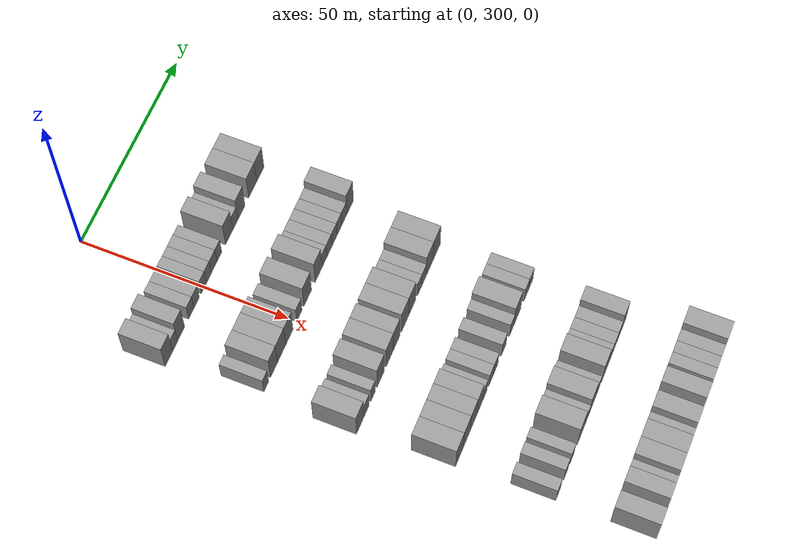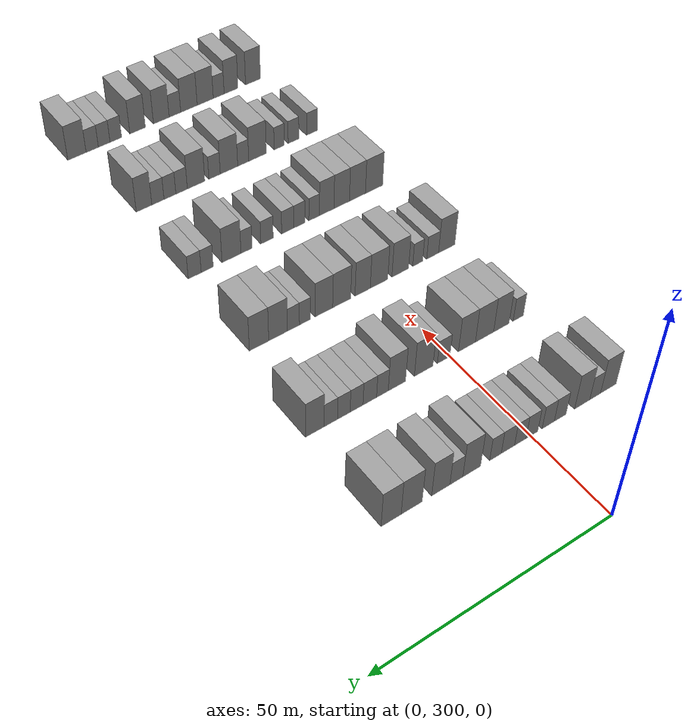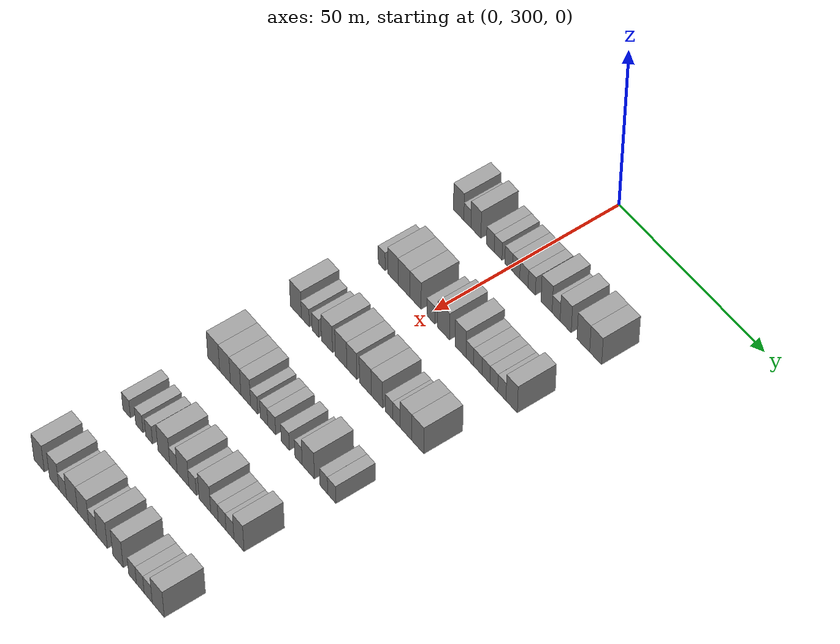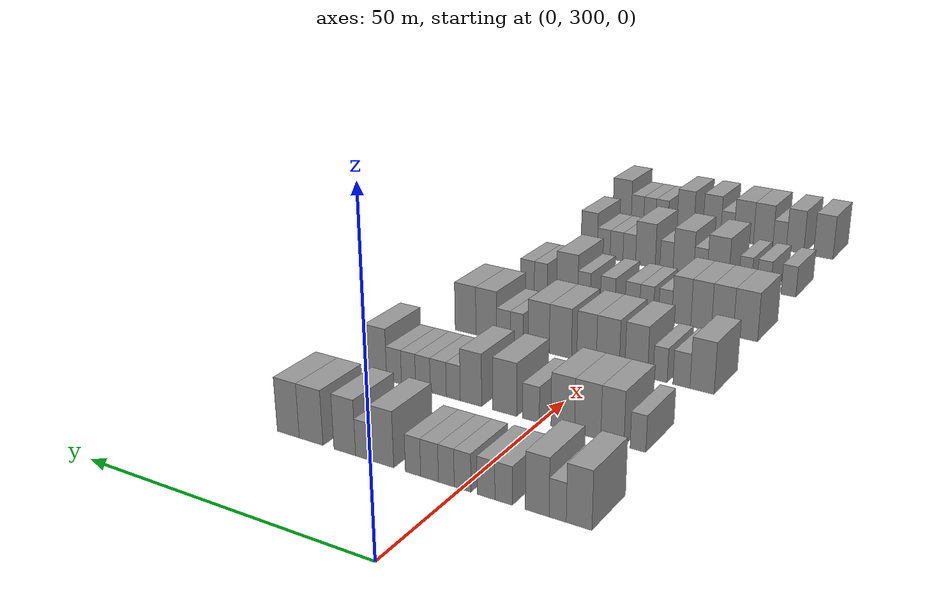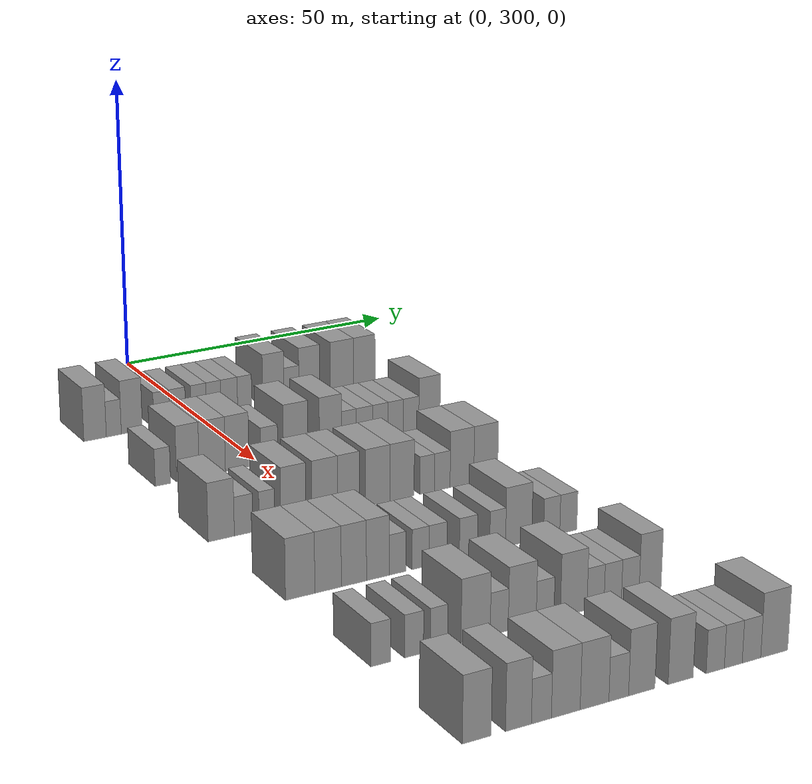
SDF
<sdf version="1.6">
 <world name="default">
  <model name="building_166">
   <static>1</static>
   <pose>25.0000 281.7110 0 0.000000 0.000000 0.000000</pose>
   <link name="link">
    <pose>0 0 4.50 0 0 0</pose>
    <collision name="collision"><geometry><box><size>10.0000 3.8083 9.0000</size></box></geometry></collision>
    <visual name="visual">
     <cast_shadows>0</cast_shadows>
     <geometry><box><size>10.0000 3.8083 9.0000</size></box></geometry>
     <material>
      <script>
       <uri>model://grey_wall/materials/scripts</uri>
       <uri>model://grey_wall/materials/textures</uri>
       <name>vrc/grey_wall</name>
      </script>
     </material>
    </visual>
   </link>
  </model>
  <model name="building_167">
   <static>1</static>
   <pose>25.0000 284.9013 0 0.000000 0.000000 0.000000</pose>
   <link name="link">
    <pose>0 0 3.00 0 0 0</pose>
    <collision name="collision"><geometry><box><size>10.0000 2.5723 6.0000</size></box></geometry></collision>
    <visual name="visual">
     <cast_shadows>0</cast_shadows>
     <geometry><box><size>10.0000 2.5723 6.0000</size></box></geometry>
     <material>
      <script>
       <uri>model://grey_wall/materials/scripts</uri>
       <uri>model://grey_wall/materials/textures</uri>
       <name>vrc/grey_wall</name>
      </script>
     </material>
    </visual>
   </link>
  </model>
  <model name="building_168">
   <static>1</static>
   <pose>25.0000 288.0024 0 0.000000 0.000000 0.000000</pose>
   <link name="link">
    <pose>0 0 4.50 0 0 0</pose>
    <collision name="collision"><geometry><box><size>10.0000 3.6300 9.0000</size></box></geometry></collision>
    <visual name="visual">
     <cast_shadows>0</cast_shadows>
     <geometry><box><size>10.0000 3.6300 9.0000</size></box></geometry>
     <material>
      <script>
       <uri>model://grey_wall/materials/scripts</uri>
       <uri>model://grey_wall/materials/textures</uri>
       <name>vrc/grey_wall</name>
      </script>
     </material>
    </visual>
   </link>
  </model>
  <model name="building_169">
   <static>1</static>
   <pose>25.0000 293.1995 0 0.000000 0.000000 0.000000</pose>
   <link name="link">
    <pose>0 0 3.00 0 0 0</pose>
    <collision name="collision"><geometry><box><size>10.0000 2.7642 6.0000</size></box></geometry></collision>
    <visual name="visual">
     <cast_shadows>0</cast_shadows>
     <geometry><box><size>10.0000 2.7642 6.0000</size></box></geometry>
     <material>
      <script>
       <uri>model://grey_wall/materials/scripts</uri>
       <uri>model://grey_wall/materials/textures</uri>
       <name>vrc/grey_wall</name>
      </script>
     </material>
    </visual>
   </link>
  </model>
  <model name="building_170">
   <static>1</static>
   <pose>25.0000 295.9941 0 0.000000 0.000000 0.000000</pose>
   <link name="link">
    <pose>0 0 3.00 0 0 0</pose>
    <collision name="collision"><geometry><box><size>10.0000 2.8248 6.0000</size></box></geometry></collision>
    <visual name="visual">
     <cast_shadows>0</cast_shadows>
     <geometry><box><size>10.0000 2.8248 6.0000</size></box></geometry>
     <material>
      <script>
       <uri>model://grey_wall/materials/scripts</uri>
       <uri>model://grey_wall/materials/textures</uri>
       <name>vrc/grey_wall</name>
      </script>
     </material>
    </visual>
   </link>
  </model>
  <model name="building_171">
   <static>1</static>
   <pose>25.0000 299.7646 0 0.000000 0.000000 0.000000</pose>
   <link name="link">
    <pose>0 0 3.00 0 0 0</pose>
    <collision name="collision"><geometry><box><size>10.0000 2.7162 6.0000</size></box></geometry></collision>
    <visual name="visual">
     <cast_shadows>0</cast_shadows>
     <geometry><box><size>10.0000 2.7162 6.0000</size></box></geometry>
     <material>
      <script>
       <uri>model://grey_wall/materials/scripts</uri>
       <uri>model://grey_wall/materials/textures</uri>
       <name>vrc/grey_wall</name>
      </script>
     </material>
    </visual>
   </link>
  </model>
  <model name="building_172">
   <static>1</static>
   <pose>25.0000 302.4198 0 0.000000 0.000000 0.000000</pose>
   <link name="link">
    <pose>0 0 3.00 0 0 0</pose>
    <collision name="collision"><geometry><box><size>10.0000 2.5943 6.0000</size></box></geometry></collision>
    <visual name="visual">
     <cast_shadows>0</cast_shadows>
     <geometry><box><size>10.0000 2.5943 6.0000</size></box></geometry>
     <material>
      <script>
       <uri>model://grey_wall/materials/scripts</uri>
       <uri>model://grey_wall/materials/textures</uri>
       <name>vrc/grey_wall</name>
      </script>
     </material>
    </visual>
   </link>
  </model>
  <model name="building_173">
   <static>1</static>
   <pose>25.0000 305.2056 0 0.000000 0.000000 0.000000</pose>
   <link name="link">
    <pose>0 0 3.00 0 0 0</pose>
    <collision name="collision"><geometry><box><size>10.0000 2.9773 6.0000</size></box></geometry></collision>
    <visual name="visual">
     <cast_shadows>0</cast_shadows>
     <geometry><box><size>10.0000 2.9773 6.0000</size></box></geometry>
     <material>
      <script>
       <uri>model://grey_wall/materials/scripts</uri>
       <uri>model://grey_wall/materials/textures</uri>
       <name>vrc/grey_wall</name>
      </script>
     </material>
    </visual>
   </link>
  </model>
  <model name="building_174">
   <static>1</static>
   <pose>25.0000 307.9878 0 0.000000 0.000000 0.000000</pose>
   <link name="link">
    <pose>0 0 3.00 0 0 0</pose>
    <collision name="collision"><geometry><box><size>10.0000 2.5871 6.0000</size></box></geometry></collision>
    <visual name="visual">
     <cast_shadows>0</cast_shadows>
     <geometry><box><size>10.0000 2.5871 6.0000</size></box></geometry>
     <material>
      <script>
       <uri>model://grey_wall/materials/scripts</uri>
       <uri>model://grey_wall/materials/textures</uri>
       <name>vrc/grey_wall</name>
      </script>
     </material>
    </visual>
   </link>
  </model>
  <model name="building_175">
   <static>1</static>
   <pose>25.0000 313.2307 0 0.000000 0.000000 0.000000</pose>
   <link name="link">
    <pose>0 0 4.50 0 0 0</pose>
    <collision name="collision"><geometry><box><size>10.0000 3.8987 9.0000</size></box></geometry></collision>
    <visual name="visual">
     <cast_shadows>0</cast_shadows>
     <geometry><box><size>10.0000 3.8987 9.0000</size></box></geometry>
     <material>
      <script>
       <uri>model://grey_wall/materials/scripts</uri>
       <uri>model://grey_wall/materials/textures</uri>
       <name>vrc/grey_wall</name>
      </script>
     </material>
    </visual>
   </link>
  </model>
  <model name="building_176">
   <static>1</static>
   <pose>25.0000 316.5735 0 0.000000 0.000000 0.000000</pose>
   <link name="link">
    <pose>0 0 3.00 0 0 0</pose>
    <collision name="collision"><geometry><box><size>10.0000 2.7870 6.0000</size></box></geometry></collision>
    <visual name="visual">
     <cast_shadows>0</cast_shadows>
     <geometry><box><size>10.0000 2.7870 6.0000</size></box></geometry>
     <material>
      <script>
       <uri>model://grey_wall/materials/scripts</uri>
       <uri>model://grey_wall/materials/textures</uri>
       <name>vrc/grey_wall</name>
      </script>
     </material>
    </visual>
   </link>
  </model>
  <model name="building_177">
   <static>1</static>
   <pose>25.0000 319.9131 0 0.000000 0.000000 0.000000</pose>
   <link name="link">
    <pose>0 0 4.50 0 0 0</pose>
    <collision name="collision"><geometry><box><size>10.0000 3.8922 9.0000</size></box></geometry></collision>
    <visual name="visual">
     <cast_shadows>0</cast_shadows>
     <geometry><box><size>10.0000 3.8922 9.0000</size></box></geometry>
     <material>
      <script>
       <uri>model://grey_wall/materials/scripts</uri>
       <uri>model://grey_wall/materials/textures</uri>
       <name>vrc/grey_wall</name>
      </script>
     </material>
    </visual>
   </link>
  </model>
  <model name="building_178">
   <static>1</static>
   <pose>25.0000 326.0613 0 0.000000 0.000000 0.000000</pose>
   <link name="link">
    <pose>0 0 4.50 0 0 0</pose>
    <collision name="collision"><geometry><box><size>10.0000 4.4042 9.0000</size></box></geometry></collision>
    <visual name="visual">
     <cast_shadows>0</cast_shadows>
     <geometry><box><size>10.0000 4.4042 9.0000</size></box></geometry>
     <material>
      <script>
       <uri>model://grey_wall/materials/scripts</uri>
       <uri>model://grey_wall/materials/textures</uri>
       <name>vrc/grey_wall</name>
      </script>
     </material>
    </visual>
   </link>
  </model>
  <model name="building_179">
   <static>1</static>
   <pose>25.0000 330.3291 0 0.000000 0.000000 0.000000</pose>
   <link name="link">
    <pose>0 0 4.50 0 0 0</pose>
    <collision name="collision"><geometry><box><size>10.0000 4.1312 9.0000</size></box></geometry></collision>
    <visual name="visual">
     <cast_shadows>0</cast_shadows>
     <geometry><box><size>10.0000 4.1312 9.0000</size></box></geometry>
     <material>
      <script>
       <uri>model://grey_wall/materials/scripts</uri>
       <uri>model://grey_wall/materials/textures</uri>
       <name>vrc/grey_wall</name>
      </script>
     </material>
    </visual>
   </link>
  </model>
  <model name="building_358">
   <static>1</static>
   <pose>47.0000 283.6261 0 0.000000 0.000000 0.000000</pose>
   <link name="link">
    <pose>0 0 3.00 0 0 0</pose>
    <collision name="collision"><geometry><box><size>10.0000 2.5145 6.0000</size></box></geometry></collision>
    <visual name="visual">
     <cast_shadows>0</cast_shadows>
     <geometry><box><size>10.0000 2.5145 6.0000</size></box></geometry>
     <material>
      <script>
       <uri>model://grey_wall/materials/scripts</uri>
       <uri>model://grey_wall/materials/textures</uri>
       <name>vrc/grey_wall</name>
      </script>
     </material>
    </visual>
   </link>
  </model>
  <model name="building_359">
   <static>1</static>
   <pose>47.0000 287.7657 0 0.000000 0.000000 0.000000</pose>
   <link name="link">
    <pose>0 0 4.50 0 0 0</pose>
    <collision name="collision"><geometry><box><size>10.0000 3.7648 9.0000</size></box></geometry></collision>
    <visual name="visual">
     <cast_shadows>0</cast_shadows>
     <geometry><box><size>10.0000 3.7648 9.0000</size></box></geometry>
     <material>
      <script>
       <uri>model://grey_wall/materials/scripts</uri>
       <uri>model://grey_wall/materials/textures</uri>
       <name>vrc/grey_wall</name>
      </script>
     </material>
    </visual>
   </link>
  </model>
  <model name="building_360">
   <static>1</static>
   <pose>47.0000 291.8306 0 0.000000 0.000000 0.000000</pose>
   <link name="link">
    <pose>0 0 4.50 0 0 0</pose>
    <collision name="collision"><geometry><box><size>10.0000 4.3651 9.0000</size></box></geometry></collision>
    <visual name="visual">
     <cast_shadows>0</cast_shadows>
     <geometry><box><size>10.0000 4.3651 9.0000</size></box></geometry>
     <material>
      <script>
       <uri>model://grey_wall/materials/scripts</uri>
       <uri>model://grey_wall/materials/textures</uri>
       <name>vrc/grey_wall</name>
      </script>
     </material>
    </visual>
   </link>
  </model>
  <model name="building_361">
   <static>1</static>
   <pose>47.0000 296.0141 0 0.000000 0.000000 0.000000</pose>
   <link name="link">
    <pose>0 0 4.50 0 0 0</pose>
    <collision name="collision"><geometry><box><size>10.0000 4.0019 9.0000</size></box></geometry></collision>
    <visual name="visual">
     <cast_shadows>0</cast_shadows>
     <geometry><box><size>10.0000 4.0019 9.0000</size></box></geometry>
     <material>
      <script>
       <uri>model://grey_wall/materials/scripts</uri>
       <uri>model://grey_wall/materials/textures</uri>
       <name>vrc/grey_wall</name>
      </script>
     </material>
    </visual>
   </link>
  </model>
  <model name="building_362">
   <static>1</static>
   <pose>47.0000 301.4804 0 0.000000 0.000000 0.000000</pose>
   <link name="link">
    <pose>0 0 3.00 0 0 0</pose>
    <collision name="collision"><geometry><box><size>10.0000 2.9306 6.0000</size></box></geometry></collision>
    <visual name="visual">
     <cast_shadows>0</cast_shadows>
     <geometry><box><size>10.0000 2.9306 6.0000</size></box></geometry>
     <material>
      <script>
       <uri>model://grey_wall/materials/scripts</uri>
       <uri>model://grey_wall/materials/textures</uri>
       <name>vrc/grey_wall</name>
      </script>
     </material>
    </visual>
   </link>
  </model>
  <model name="building_363">
   <static>1</static>
   <pose>47.0000 306.0813 0 0.000000 0.000000 0.000000</pose>
   <link name="link">
    <pose>0 0 4.50 0 0 0</pose>
    <collision name="collision"><geometry><box><size>10.0000 4.2711 9.0000</size></box></geometry></collision>
    <visual name="visual">
     <cast_shadows>0</cast_shadows>
     <geometry><box><size>10.0000 4.2711 9.0000</size></box></geometry>
     <material>
      <script>
       <uri>model://grey_wall/materials/scripts</uri>
       <uri>model://grey_wall/materials/textures</uri>
       <name>vrc/grey_wall</name>
      </script>
     </material>
    </visual>
   </link>
  </model>
  <model name="building_364">
   <static>1</static>
   <pose>47.0000 312.1673 0 0.000000 0.000000 0.000000</pose>
   <link name="link">
    <pose>0 0 4.50 0 0 0</pose>
    <collision name="collision"><geometry><box><size>10.0000 3.9009 9.0000</size></box></geometry></collision>
    <visual name="visual">
     <cast_shadows>0</cast_shadows>
     <geometry><box><size>10.0000 3.9009 9.0000</size></box></geometry>
     <material>
      <script>
       <uri>model://grey_wall/materials/scripts</uri>
       <uri>model://grey_wall/materials/textures</uri>
       <name>vrc/grey_wall</name>
      </script>
     </material>
    </visual>
   </link>
  </model>
  <model name="building_365">
   <static>1</static>
   <pose>47.0000 315.4169 0 0.000000 0.000000 0.000000</pose>
   <link name="link">
    <pose>0 0 3.00 0 0 0</pose>
    <collision name="collision"><geometry><box><size>10.0000 2.5984 6.0000</size></box></geometry></collision>
    <visual name="visual">
     <cast_shadows>0</cast_shadows>
     <geometry><box><size>10.0000 2.5984 6.0000</size></box></geometry>
     <material>
      <script>
       <uri>model://grey_wall/materials/scripts</uri>
       <uri>model://grey_wall/materials/textures</uri>
       <name>vrc/grey_wall</name>
      </script>
     </material>
    </visual>
   </link>
  </model>
  <model name="building_366">
   <static>1</static>
   <pose>47.0000 318.2119 0 0.000000 0.000000 0.000000</pose>
   <link name="link">
    <pose>0 0 3.00 0 0 0</pose>
    <collision name="collision"><geometry><box><size>10.0000 2.9916 6.0000</size></box></geometry></collision>
    <visual name="visual">
     <cast_shadows>0</cast_shadows>
     <geometry><box><size>10.0000 2.9916 6.0000</size></box></geometry>
     <material>
      <script>
       <uri>model://grey_wall/materials/scripts</uri>
       <uri>model://grey_wall/materials/textures</uri>
       <name>vrc/grey_wall</name>
      </script>
     </material>
    </visual>
   </link>
  </model>
  <model name="building_367">
   <static>1</static>
   <pose>47.0000 321.1097 0 0.000000 0.000000 0.000000</pose>
   <link name="link">
    <pose>0 0 3.00 0 0 0</pose>
    <collision name="collision"><geometry><box><size>10.0000 2.8039 6.0000</size></box></geometry></collision>
    <visual name="visual">
     <cast_shadows>0</cast_shadows>
     <geometry><box><size>10.0000 2.8039 6.0000</size></box></geometry>
     <material>
      <script>
       <uri>model://grey_wall/materials/scripts</uri>
       <uri>model://grey_wall/materials/textures</uri>
       <name>vrc/grey_wall</name>
      </script>
     </material>
    </visual>
   </link>
  </model>
  <model name="building_368">
   <static>1</static>
   <pose>47.0000 323.8746 0 0.000000 0.000000 0.000000</pose>
   <link name="link">
    <pose>0 0 3.00 0 0 0</pose>
    <collision name="collision"><geometry><box><size>10.0000 2.7260 6.0000</size></box></geometry></collision>
    <visual name="visual">
     <cast_shadows>0</cast_shadows>
     <geometry><box><size>10.0000 2.7260 6.0000</size></box></geometry>
     <material>
      <script>
       <uri>model://grey_wall/materials/scripts</uri>
       <uri>model://grey_wall/materials/textures</uri>
       <name>vrc/grey_wall</name>
      </script>
     </material>
    </visual>
   </link>
  </model>
  <model name="building_369">
   <static>1</static>
   <pose>47.0000 326.6795 0 0.000000 0.000000 0.000000</pose>
   <link name="link">
    <pose>0 0 3.00 0 0 0</pose>
    <collision name="collision"><geometry><box><size>10.0000 2.8840 6.0000</size></box></geometry></collision>
    <visual name="visual">
     <cast_shadows>0</cast_shadows>
     <geometry><box><size>10.0000 2.8840 6.0000</size></box></geometry>
     <material>
      <script>
       <uri>model://grey_wall/materials/scripts</uri>
       <uri>model://grey_wall/materials/textures</uri>
       <name>vrc/grey_wall</name>
      </script>
     </material>
    </visual>
   </link>
  </model>
  <model name="building_370">
   <static>1</static>
   <pose>47.0000 330.0916 0 0.000000 0.000000 0.000000</pose>
   <link name="link">
    <pose>0 0 4.50 0 0 0</pose>
    <collision name="collision"><geometry><box><size>10.0000 3.9401 9.0000</size></box></geometry></collision>
    <visual name="visual">
     <cast_shadows>0</cast_shadows>
     <geometry><box><size>10.0000 3.9401 9.0000</size></box></geometry>
     <material>
      <script>
       <uri>model://grey_wall/materials/scripts</uri>
       <uri>model://grey_wall/materials/textures</uri>
       <name>vrc/grey_wall</name>
      </script>
     </material>
    </visual>
   </link>
  </model>
  <model name="building_544">
   <static>1</static>
   <pose>69.0000 282.8954 0 0.000000 0.000000 0.000000</pose>
   <link name="link">
    <pose>0 0 4.50 0 0 0</pose>
    <collision name="collision"><geometry><box><size>10.0000 4.1082 9.0000</size></box></geometry></collision>
    <visual name="visual">
     <cast_shadows>0</cast_shadows>
     <geometry><box><size>10.0000 4.1082 9.0000</size></box></geometry>
     <material>
      <script>
       <uri>model://grey_wall/materials/scripts</uri>
       <uri>model://grey_wall/materials/textures</uri>
       <name>vrc/grey_wall</name>
      </script>
     </material>
    </visual>
   </link>
  </model>
  <model name="building_545">
   <static>1</static>
   <pose>69.0000 286.4210 0 0.000000 0.000000 0.000000</pose>
   <link name="link">
    <pose>0 0 3.00 0 0 0</pose>
    <collision name="collision"><geometry><box><size>10.0000 2.9429 6.0000</size></box></geometry></collision>
    <visual name="visual">
     <cast_shadows>0</cast_shadows>
     <geometry><box><size>10.0000 2.9429 6.0000</size></box></geometry>
     <material>
      <script>
       <uri>model://grey_wall/materials/scripts</uri>
       <uri>model://grey_wall/materials/textures</uri>
       <name>vrc/grey_wall</name>
      </script>
     </material>
    </visual>
   </link>
  </model>
  <model name="building_546">
   <static>1</static>
   <pose>69.0000 290.1252 0 0.000000 0.000000 0.000000</pose>
   <link name="link">
    <pose>0 0 3.00 0 0 0</pose>
    <collision name="collision"><geometry><box><size>10.0000 2.4654 6.0000</size></box></geometry></collision>
    <visual name="visual">
     <cast_shadows>0</cast_shadows>
     <geometry><box><size>10.0000 2.4654 6.0000</size></box></geometry>
     <material>
      <script>
       <uri>model://grey_wall/materials/scripts</uri>
       <uri>model://grey_wall/materials/textures</uri>
       <name>vrc/grey_wall</name>
      </script>
     </material>
    </visual>
   </link>
  </model>
  <model name="building_547">
   <static>1</static>
   <pose>69.0000 294.3831 0 0.000000 0.000000 0.000000</pose>
   <link name="link">
    <pose>0 0 4.50 0 0 0</pose>
    <collision name="collision"><geometry><box><size>10.0000 4.0504 9.0000</size></box></geometry></collision>
    <visual name="visual">
     <cast_shadows>0</cast_shadows>
     <geometry><box><size>10.0000 4.0504 9.0000</size></box></geometry>
     <material>
      <script>
       <uri>model://grey_wall/materials/scripts</uri>
       <uri>model://grey_wall/materials/textures</uri>
       <name>vrc/grey_wall</name>
      </script>
     </material>
    </visual>
   </link>
  </model>
  <model name="building_548">
   <static>1</static>
   <pose>69.0000 299.5077 0 0.000000 0.000000 0.000000</pose>
   <link name="link">
    <pose>0 0 4.50 0 0 0</pose>
    <collision name="collision"><geometry><box><size>10.0000 4.1988 9.0000</size></box></geometry></collision>
    <visual name="visual">
     <cast_shadows>0</cast_shadows>
     <geometry><box><size>10.0000 4.1988 9.0000</size></box></geometry>
     <material>
      <script>
       <uri>model://grey_wall/materials/scripts</uri>
       <uri>model://grey_wall/materials/textures</uri>
       <name>vrc/grey_wall</name>
      </script>
     </material>
    </visual>
   </link>
  </model>
  <model name="building_549">
   <static>1</static>
   <pose>69.0000 303.4177 0 0.000000 0.000000 0.000000</pose>
   <link name="link">
    <pose>0 0 4.50 0 0 0</pose>
    <collision name="collision"><geometry><box><size>10.0000 3.6212 9.0000</size></box></geometry></collision>
    <visual name="visual">
     <cast_shadows>0</cast_shadows>
     <geometry><box><size>10.0000 3.6212 9.0000</size></box></geometry>
     <material>
      <script>
       <uri>model://grey_wall/materials/scripts</uri>
       <uri>model://grey_wall/materials/textures</uri>
       <name>vrc/grey_wall</name>
      </script>
     </material>
    </visual>
   </link>
  </model>
  <model name="building_550">
   <static>1</static>
   <pose>69.0000 308.3317 0 0.000000 0.000000 0.000000</pose>
   <link name="link">
    <pose>0 0 4.50 0 0 0</pose>
    <collision name="collision"><geometry><box><size>10.0000 4.2067 9.0000</size></box></geometry></collision>
    <visual name="visual">
     <cast_shadows>0</cast_shadows>
     <geometry><box><size>10.0000 4.2067 9.0000</size></box></geometry>
     <material>
      <script>
       <uri>model://grey_wall/materials/scripts</uri>
       <uri>model://grey_wall/materials/textures</uri>
       <name>vrc/grey_wall</name>
      </script>
     </material>
    </visual>
   </link>
  </model>
  <model name="building_551">
   <static>1</static>
   <pose>69.0000 312.4737 0 0.000000 0.000000 0.000000</pose>
   <link name="link">
    <pose>0 0 4.50 0 0 0</pose>
    <collision name="collision"><geometry><box><size>10.0000 4.0772 9.0000</size></box></geometry></collision>
    <visual name="visual">
     <cast_shadows>0</cast_shadows>
     <geometry><box><size>10.0000 4.0772 9.0000</size></box></geometry>
     <material>
      <script>
       <uri>model://grey_wall/materials/scripts</uri>
       <uri>model://grey_wall/materials/textures</uri>
       <name>vrc/grey_wall</name>
      </script>
     </material>
    </visual>
   </link>
  </model>
  <model name="building_552">
   <static>1</static>
   <pose>69.0000 316.7752 0 0.000000 0.000000 0.000000</pose>
   <link name="link">
    <pose>0 0 3.00 0 0 0</pose>
    <collision name="collision"><geometry><box><size>10.0000 2.5257 6.0000</size></box></geometry></collision>
    <visual name="visual">
     <cast_shadows>0</cast_shadows>
     <geometry><box><size>10.0000 2.5257 6.0000</size></box></geometry>
     <material>
      <script>
       <uri>model://grey_wall/materials/scripts</uri>
       <uri>model://grey_wall/materials/textures</uri>
       <name>vrc/grey_wall</name>
      </script>
     </material>
    </visual>
   </link>
  </model>
  <model name="building_553">
   <static>1</static>
   <pose>69.0000 319.3839 0 0.000000 0.000000 0.000000</pose>
   <link name="link">
    <pose>0 0 3.00 0 0 0</pose>
    <collision name="collision"><geometry><box><size>10.0000 2.6917 6.0000</size></box></geometry></collision>
    <visual name="visual">
     <cast_shadows>0</cast_shadows>
     <geometry><box><size>10.0000 2.6917 6.0000</size></box></geometry>
     <material>
      <script>
       <uri>model://grey_wall/materials/scripts</uri>
       <uri>model://grey_wall/materials/textures</uri>
       <name>vrc/grey_wall</name>
      </script>
     </material>
    </visual>
   </link>
  </model>
  <model name="building_554">
   <static>1</static>
   <pose>69.0000 322.8153 0 0.000000 0.000000 0.000000</pose>
   <link name="link">
    <pose>0 0 4.50 0 0 0</pose>
    <collision name="collision"><geometry><box><size>10.0000 4.1712 9.0000</size></box></geometry></collision>
    <visual name="visual">
     <cast_shadows>0</cast_shadows>
     <geometry><box><size>10.0000 4.1712 9.0000</size></box></geometry>
     <material>
      <script>
       <uri>model://grey_wall/materials/scripts</uri>
       <uri>model://grey_wall/materials/textures</uri>
       <name>vrc/grey_wall</name>
      </script>
     </material>
    </visual>
   </link>
  </model>
  <model name="building_555">
   <static>1</static>
   <pose>69.0000 327.0246 0 0.000000 0.000000 0.000000</pose>
   <link name="link">
    <pose>0 0 4.50 0 0 0</pose>
    <collision name="collision"><geometry><box><size>10.0000 4.2475 9.0000</size></box></geometry></collision>
    <visual name="visual">
     <cast_shadows>0</cast_shadows>
     <geometry><box><size>10.0000 4.2475 9.0000</size></box></geometry>
     <material>
      <script>
       <uri>model://grey_wall/materials/scripts</uri>
       <uri>model://grey_wall/materials/textures</uri>
       <name>vrc/grey_wall</name>
      </script>
     </material>
    </visual>
   </link>
  </model>
  <model name="building_724">
   <static>1</static>
   <pose>91.0000 284.1343 0 0.000000 0.000000 0.000000</pose>
   <link name="link">
    <pose>0 0 4.50 0 0 0</pose>
    <collision name="collision"><geometry><box><size>10.0000 4.4308 9.0000</size></box></geometry></collision>
    <visual name="visual">
     <cast_shadows>0</cast_shadows>
     <geometry><box><size>10.0000 4.4308 9.0000</size></box></geometry>
     <material>
      <script>
       <uri>model://grey_wall/materials/scripts</uri>
       <uri>model://grey_wall/materials/textures</uri>
       <name>vrc/grey_wall</name>
      </script>
     </material>
    </visual>
   </link>
  </model>
  <model name="building_725">
   <static>1</static>
   <pose>91.0000 288.3679 0 0.000000 0.000000 0.000000</pose>
   <link name="link">
    <pose>0 0 4.50 0 0 0</pose>
    <collision name="collision"><geometry><box><size>10.0000 4.0365 9.0000</size></box></geometry></collision>
    <visual name="visual">
     <cast_shadows>0</cast_shadows>
     <geometry><box><size>10.0000 4.0365 9.0000</size></box></geometry>
     <material>
      <script>
       <uri>model://grey_wall/materials/scripts</uri>
       <uri>model://grey_wall/materials/textures</uri>
       <name>vrc/grey_wall</name>
      </script>
     </material>
    </visual>
   </link>
  </model>
  <model name="building_726">
   <static>1</static>
   <pose>91.0000 292.3277 0 0.000000 0.000000 0.000000</pose>
   <link name="link">
    <pose>0 0 4.50 0 0 0</pose>
    <collision name="collision"><geometry><box><size>10.0000 3.8831 9.0000</size></box></geometry></collision>
    <visual name="visual">
     <cast_shadows>0</cast_shadows>
     <geometry><box><size>10.0000 3.8831 9.0000</size></box></geometry>
     <material>
      <script>
       <uri>model://grey_wall/materials/scripts</uri>
       <uri>model://grey_wall/materials/textures</uri>
       <name>vrc/grey_wall</name>
      </script>
     </material>
    </visual>
   </link>
  </model>
  <model name="building_727">
   <static>1</static>
   <pose>91.0000 296.0705 0 0.000000 0.000000 0.000000</pose>
   <link name="link">
    <pose>0 0 4.50 0 0 0</pose>
    <collision name="collision"><geometry><box><size>10.0000 3.6026 9.0000</size></box></geometry></collision>
    <visual name="visual">
     <cast_shadows>0</cast_shadows>
     <geometry><box><size>10.0000 3.6026 9.0000</size></box></geometry>
     <material>
      <script>
       <uri>model://grey_wall/materials/scripts</uri>
       <uri>model://grey_wall/materials/textures</uri>
       <name>vrc/grey_wall</name>
      </script>
     </material>
    </visual>
   </link>
  </model>
  <model name="building_728">
   <static>1</static>
   <pose>91.0000 299.1581 0 0.000000 0.000000 0.000000</pose>
   <link name="link">
    <pose>0 0 3.00 0 0 0</pose>
    <collision name="collision"><geometry><box><size>10.0000 2.5726 6.0000</size></box></geometry></collision>
    <visual name="visual">
     <cast_shadows>0</cast_shadows>
     <geometry><box><size>10.0000 2.5726 6.0000</size></box></geometry>
     <material>
      <script>
       <uri>model://grey_wall/materials/scripts</uri>
       <uri>model://grey_wall/materials/textures</uri>
       <name>vrc/grey_wall</name>
      </script>
     </material>
    </visual>
   </link>
  </model>
  <model name="building_729">
   <static>1</static>
   <pose>91.0000 302.7968 0 0.000000 0.000000 0.000000</pose>
   <link name="link">
    <pose>0 0 3.00 0 0 0</pose>
    <collision name="collision"><geometry><box><size>10.0000 2.7049 6.0000</size></box></geometry></collision>
    <visual name="visual">
     <cast_shadows>0</cast_shadows>
     <geometry><box><size>10.0000 2.7049 6.0000</size></box></geometry>
     <material>
      <script>
       <uri>model://grey_wall/materials/scripts</uri>
       <uri>model://grey_wall/materials/textures</uri>
       <name>vrc/grey_wall</name>
      </script>
     </material>
    </visual>
   </link>
  </model>
  <model name="building_730">
   <static>1</static>
   <pose>91.0000 305.5882 0 0.000000 0.000000 0.000000</pose>
   <link name="link">
    <pose>0 0 3.00 0 0 0</pose>
    <collision name="collision"><geometry><box><size>10.0000 2.8779 6.0000</size></box></geometry></collision>
    <visual name="visual">
     <cast_shadows>0</cast_shadows>
     <geometry><box><size>10.0000 2.8779 6.0000</size></box></geometry>
     <material>
      <script>
       <uri>model://grey_wall/materials/scripts</uri>
       <uri>model://grey_wall/materials/textures</uri>
       <name>vrc/grey_wall</name>
      </script>
     </material>
    </visual>
   </link>
  </model>
  <model name="building_731">
   <static>1</static>
   <pose>91.0000 310.5139 0 0.000000 0.000000 0.000000</pose>
   <link name="link">
    <pose>0 0 3.00 0 0 0</pose>
    <collision name="collision"><geometry><box><size>10.0000 2.9735 6.0000</size></box></geometry></collision>
    <visual name="visual">
     <cast_shadows>0</cast_shadows>
     <geometry><box><size>10.0000 2.9735 6.0000</size></box></geometry>
     <material>
      <script>
       <uri>model://grey_wall/materials/scripts</uri>
       <uri>model://grey_wall/materials/textures</uri>
       <name>vrc/grey_wall</name>
      </script>
     </material>
    </visual>
   </link>
  </model>
  <model name="building_732">
   <static>1</static>
   <pose>91.0000 315.3149 0 0.000000 0.000000 0.000000</pose>
   <link name="link">
    <pose>0 0 3.00 0 0 0</pose>
    <collision name="collision"><geometry><box><size>10.0000 2.6283 6.0000</size></box></geometry></collision>
    <visual name="visual">
     <cast_shadows>0</cast_shadows>
     <geometry><box><size>10.0000 2.6283 6.0000</size></box></geometry>
     <material>
      <script>
       <uri>model://grey_wall/materials/scripts</uri>
       <uri>model://grey_wall/materials/textures</uri>
       <name>vrc/grey_wall</name>
      </script>
     </material>
    </visual>
   </link>
  </model>
  <model name="building_733">
   <static>1</static>
   <pose>91.0000 318.8189 0 0.000000 0.000000 0.000000</pose>
   <link name="link">
    <pose>0 0 4.50 0 0 0</pose>
    <collision name="collision"><geometry><box><size>10.0000 4.3798 9.0000</size></box></geometry></collision>
    <visual name="visual">
     <cast_shadows>0</cast_shadows>
     <geometry><box><size>10.0000 4.3798 9.0000</size></box></geometry>
     <material>
      <script>
       <uri>model://grey_wall/materials/scripts</uri>
       <uri>model://grey_wall/materials/textures</uri>
       <name>vrc/grey_wall</name>
      </script>
     </material>
    </visual>
   </link>
  </model>
  <model name="building_734">
   <static>1</static>
   <pose>91.0000 324.3898 0 0.000000 0.000000 0.000000</pose>
   <link name="link">
    <pose>0 0 3.00 0 0 0</pose>
    <collision name="collision"><geometry><box><size>10.0000 2.7620 6.0000</size></box></geometry></collision>
    <visual name="visual">
     <cast_shadows>0</cast_shadows>
     <geometry><box><size>10.0000 2.7620 6.0000</size></box></geometry>
     <material>
      <script>
       <uri>model://grey_wall/materials/scripts</uri>
       <uri>model://grey_wall/materials/textures</uri>
       <name>vrc/grey_wall</name>
      </script>
     </material>
    </visual>
   </link>
  </model>
  <model name="building_735">
   <static>1</static>
   <pose>91.0000 327.2352 0 0.000000 0.000000 0.000000</pose>
   <link name="link">
    <pose>0 0 3.00 0 0 0</pose>
    <collision name="collision"><geometry><box><size>10.0000 2.9287 6.0000</size></box></geometry></collision>
    <visual name="visual">
     <cast_shadows>0</cast_shadows>
     <geometry><box><size>10.0000 2.9287 6.0000</size></box></geometry>
     <material>
      <script>
       <uri>model://grey_wall/materials/scripts</uri>
       <uri>model://grey_wall/materials/textures</uri>
       <name>vrc/grey_wall</name>
      </script>
     </material>
    </visual>
   </link>
  </model>
  <model name="building_910">
   <static>1</static>
   <pose>113.0000 284.1883 0 0.000000 0.000000 0.000000</pose>
   <link name="link">
    <pose>0 0 3.00 0 0 0</pose>
    <collision name="collision"><geometry><box><size>10.0000 2.8570 6.0000</size></box></geometry></collision>
    <visual name="visual">
     <cast_shadows>0</cast_shadows>
     <geometry><box><size>10.0000 2.8570 6.0000</size></box></geometry>
     <material>
      <script>
       <uri>model://grey_wall/materials/scripts</uri>
       <uri>model://grey_wall/materials/textures</uri>
       <name>vrc/grey_wall</name>
      </script>
     </material>
    </visual>
   </link>
  </model>
  <model name="building_911">
   <static>1</static>
   <pose>113.0000 289.0014 0 0.000000 0.000000 0.000000</pose>
   <link name="link">
    <pose>0 0 3.00 0 0 0</pose>
    <collision name="collision"><geometry><box><size>10.0000 2.7692 6.0000</size></box></geometry></collision>
    <visual name="visual">
     <cast_shadows>0</cast_shadows>
     <geometry><box><size>10.0000 2.7692 6.0000</size></box></geometry>
     <material>
      <script>
       <uri>model://grey_wall/materials/scripts</uri>
       <uri>model://grey_wall/materials/textures</uri>
       <name>vrc/grey_wall</name>
      </script>
     </material>
    </visual>
   </link>
  </model>
  <model name="building_912">
   <static>1</static>
   <pose>113.0000 292.6737 0 0.000000 0.000000 0.000000</pose>
   <link name="link">
    <pose>0 0 3.00 0 0 0</pose>
    <collision name="collision"><geometry><box><size>10.0000 2.5754 6.0000</size></box></geometry></collision>
    <visual name="visual">
     <cast_shadows>0</cast_shadows>
     <geometry><box><size>10.0000 2.5754 6.0000</size></box></geometry>
     <material>
      <script>
       <uri>model://grey_wall/materials/scripts</uri>
       <uri>model://grey_wall/materials/textures</uri>
       <name>vrc/grey_wall</name>
      </script>
     </material>
    </visual>
   </link>
  </model>
  <model name="building_913">
   <static>1</static>
   <pose>113.0000 298.1644 0 0.000000 0.000000 0.000000</pose>
   <link name="link">
    <pose>0 0 4.50 0 0 0</pose>
    <collision name="collision"><geometry><box><size>10.0000 4.4060 9.0000</size></box></geometry></collision>
    <visual name="visual">
     <cast_shadows>0</cast_shadows>
     <geometry><box><size>10.0000 4.4060 9.0000</size></box></geometry>
     <material>
      <script>
       <uri>model://grey_wall/materials/scripts</uri>
       <uri>model://grey_wall/materials/textures</uri>
       <name>vrc/grey_wall</name>
      </script>
     </material>
    </visual>
   </link>
  </model>
  <model name="building_914">
   <static>1</static>
   <pose>113.0000 301.7435 0 0.000000 0.000000 0.000000</pose>
   <link name="link">
    <pose>0 0 3.00 0 0 0</pose>
    <collision name="collision"><geometry><box><size>10.0000 2.7522 6.0000</size></box></geometry></collision>
    <visual name="visual">
     <cast_shadows>0</cast_shadows>
     <geometry><box><size>10.0000 2.7522 6.0000</size></box></geometry>
     <material>
      <script>
       <uri>model://grey_wall/materials/scripts</uri>
       <uri>model://grey_wall/materials/textures</uri>
       <name>vrc/grey_wall</name>
      </script>
     </material>
    </visual>
   </link>
  </model>
  <model name="building_915">
   <static>1</static>
   <pose>113.0000 305.2740 0 0.000000 0.000000 0.000000</pose>
   <link name="link">
    <pose>0 0 4.50 0 0 0</pose>
    <collision name="collision"><geometry><box><size>10.0000 4.3088 9.0000</size></box></geometry></collision>
    <visual name="visual">
     <cast_shadows>0</cast_shadows>
     <geometry><box><size>10.0000 4.3088 9.0000</size></box></geometry>
     <material>
      <script>
       <uri>model://grey_wall/materials/scripts</uri>
       <uri>model://grey_wall/materials/textures</uri>
       <name>vrc/grey_wall</name>
      </script>
     </material>
    </visual>
   </link>
  </model>
  <model name="building_916">
   <static>1</static>
   <pose>113.0000 308.8129 0 0.000000 0.000000 0.000000</pose>
   <link name="link">
    <pose>0 0 3.00 0 0 0</pose>
    <collision name="collision"><geometry><box><size>10.0000 2.7690 6.0000</size></box></geometry></collision>
    <visual name="visual">
     <cast_shadows>0</cast_shadows>
     <geometry><box><size>10.0000 2.7690 6.0000</size></box></geometry>
     <material>
      <script>
       <uri>model://grey_wall/materials/scripts</uri>
       <uri>model://grey_wall/materials/textures</uri>
       <name>vrc/grey_wall</name>
      </script>
     </material>
    </visual>
   </link>
  </model>
  <model name="building_917">
   <static>1</static>
   <pose>113.0000 313.3058 0 0.000000 0.000000 0.000000</pose>
   <link name="link">
    <pose>0 0 4.50 0 0 0</pose>
    <collision name="collision"><geometry><box><size>10.0000 4.2169 9.0000</size></box></geometry></collision>
    <visual name="visual">
     <cast_shadows>0</cast_shadows>
     <geometry><box><size>10.0000 4.2169 9.0000</size></box></geometry>
     <material>
      <script>
       <uri>model://grey_wall/materials/scripts</uri>
       <uri>model://grey_wall/materials/textures</uri>
       <name>vrc/grey_wall</name>
      </script>
     </material>
    </visual>
   </link>
  </model>
  <model name="building_918">
   <static>1</static>
   <pose>113.0000 316.7836 0 0.000000 0.000000 0.000000</pose>
   <link name="link">
    <pose>0 0 3.00 0 0 0</pose>
    <collision name="collision"><geometry><box><size>10.0000 2.7387 6.0000</size></box></geometry></collision>
    <visual name="visual">
     <cast_shadows>0</cast_shadows>
     <geometry><box><size>10.0000 2.7387 6.0000</size></box></geometry>
     <material>
      <script>
       <uri>model://grey_wall/materials/scripts</uri>
       <uri>model://grey_wall/materials/textures</uri>
       <name>vrc/grey_wall</name>
      </script>
     </material>
    </visual>
   </link>
  </model>
  <model name="building_919">
   <static>1</static>
   <pose>113.0000 319.5598 0 0.000000 0.000000 0.000000</pose>
   <link name="link">
    <pose>0 0 3.00 0 0 0</pose>
    <collision name="collision"><geometry><box><size>10.0000 2.8137 6.0000</size></box></geometry></collision>
    <visual name="visual">
     <cast_shadows>0</cast_shadows>
     <geometry><box><size>10.0000 2.8137 6.0000</size></box></geometry>
     <material>
      <script>
       <uri>model://grey_wall/materials/scripts</uri>
       <uri>model://grey_wall/materials/textures</uri>
       <name>vrc/grey_wall</name>
      </script>
     </material>
    </visual>
   </link>
  </model>
  <model name="building_920">
   <static>1</static>
   <pose>113.0000 322.3978 0 0.000000 0.000000 0.000000</pose>
   <link name="link">
    <pose>0 0 3.00 0 0 0</pose>
    <collision name="collision"><geometry><box><size>10.0000 2.8623 6.0000</size></box></geometry></collision>
    <visual name="visual">
     <cast_shadows>0</cast_shadows>
     <geometry><box><size>10.0000 2.8623 6.0000</size></box></geometry>
     <material>
      <script>
       <uri>model://grey_wall/materials/scripts</uri>
       <uri>model://grey_wall/materials/textures</uri>
       <name>vrc/grey_wall</name>
      </script>
     </material>
    </visual>
   </link>
  </model>
  <model name="building_921">
   <static>1</static>
   <pose>113.0000 325.6397 0 0.000000 0.000000 0.000000</pose>
   <link name="link">
    <pose>0 0 4.50 0 0 0</pose>
    <collision name="collision"><geometry><box><size>10.0000 3.6215 9.0000</size></box></geometry></collision>
    <visual name="visual">
     <cast_shadows>0</cast_shadows>
     <geometry><box><size>10.0000 3.6215 9.0000</size></box></geometry>
     <material>
      <script>
       <uri>model://grey_wall/materials/scripts</uri>
       <uri>model://grey_wall/materials/textures</uri>
       <name>vrc/grey_wall</name>
      </script>
     </material>
    </visual>
   </link>
  </model>
  <model name="building_1092">
   <static>1</static>
   <pose>135.0000 284.7773 0 0.000000 0.000000 0.000000</pose>
   <link name="link">
    <pose>0 0 4.50 0 0 0</pose>
    <collision name="collision"><geometry><box><size>10.0000 3.9858 9.0000</size></box></geometry></collision>
    <visual name="visual">
     <cast_shadows>0</cast_shadows>
     <geometry><box><size>10.0000 3.9858 9.0000</size></box></geometry>
     <material>
      <script>
       <uri>model://grey_wall/materials/scripts</uri>
       <uri>model://grey_wall/materials/textures</uri>
       <name>vrc/grey_wall</name>
      </script>
     </material>
    </visual>
   </link>
  </model>
  <model name="building_1093">
   <static>1</static>
   <pose>135.0000 290.5918 0 0.000000 0.000000 0.000000</pose>
   <link name="link">
    <pose>0 0 4.50 0 0 0</pose>
    <collision name="collision"><geometry><box><size>10.0000 3.6432 9.0000</size></box></geometry></collision>
    <visual name="visual">
     <cast_shadows>0</cast_shadows>
     <geometry><box><size>10.0000 3.6432 9.0000</size></box></geometry>
     <material>
      <script>
       <uri>model://grey_wall/materials/scripts</uri>
       <uri>model://grey_wall/materials/textures</uri>
       <name>vrc/grey_wall</name>
      </script>
     </material>
    </visual>
   </link>
  </model>
  <model name="building_1094">
   <static>1</static>
   <pose>135.0000 293.8349 0 0.000000 0.000000 0.000000</pose>
   <link name="link">
    <pose>0 0 3.00 0 0 0</pose>
    <collision name="collision"><geometry><box><size>10.0000 2.8431 6.0000</size></box></geometry></collision>
    <visual name="visual">
     <cast_shadows>0</cast_shadows>
     <geometry><box><size>10.0000 2.8431 6.0000</size></box></geometry>
     <material>
      <script>
       <uri>model://grey_wall/materials/scripts</uri>
       <uri>model://grey_wall/materials/textures</uri>
       <name>vrc/grey_wall</name>
      </script>
     </material>
    </visual>
   </link>
  </model>
  <model name="building_1095">
   <static>1</static>
   <pose>135.0000 297.3332 0 0.000000 0.000000 0.000000</pose>
   <link name="link">
    <pose>0 0 4.50 0 0 0</pose>
    <collision name="collision"><geometry><box><size>10.0000 4.1535 9.0000</size></box></geometry></collision>
    <visual name="visual">
     <cast_shadows>0</cast_shadows>
     <geometry><box><size>10.0000 4.1535 9.0000</size></box></geometry>
     <material>
      <script>
       <uri>model://grey_wall/materials/scripts</uri>
       <uri>model://grey_wall/materials/textures</uri>
       <name>vrc/grey_wall</name>
      </script>
     </material>
    </visual>
   </link>
  </model>
  <model name="building_1096">
   <static>1</static>
   <pose>135.0000 301.5099 0 0.000000 0.000000 0.000000</pose>
   <link name="link">
    <pose>0 0 4.50 0 0 0</pose>
    <collision name="collision"><geometry><box><size>10.0000 4.1999 9.0000</size></box></geometry></collision>
    <visual name="visual">
     <cast_shadows>0</cast_shadows>
     <geometry><box><size>10.0000 4.1999 9.0000</size></box></geometry>
     <material>
      <script>
       <uri>model://grey_wall/materials/scripts</uri>
       <uri>model://grey_wall/materials/textures</uri>
       <name>vrc/grey_wall</name>
      </script>
     </material>
    </visual>
   </link>
  </model>
  <model name="building_1097">
   <static>1</static>
   <pose>135.0000 305.0700 0 0.000000 0.000000 0.000000</pose>
   <link name="link">
    <pose>0 0 3.00 0 0 0</pose>
    <collision name="collision"><geometry><box><size>10.0000 2.9203 6.0000</size></box></geometry></collision>
    <visual name="visual">
     <cast_shadows>0</cast_shadows>
     <geometry><box><size>10.0000 2.9203 6.0000</size></box></geometry>
     <material>
      <script>
       <uri>model://grey_wall/materials/scripts</uri>
       <uri>model://grey_wall/materials/textures</uri>
       <name>vrc/grey_wall</name>
      </script>
     </material>
    </visual>
   </link>
  </model>
  <model name="building_1098">
   <static>1</static>
   <pose>135.0000 308.5017 0 0.000000 0.000000 0.000000</pose>
   <link name="link">
    <pose>0 0 4.50 0 0 0</pose>
    <collision name="collision"><geometry><box><size>10.0000 3.9431 9.0000</size></box></geometry></collision>
    <visual name="visual">
     <cast_shadows>0</cast_shadows>
     <geometry><box><size>10.0000 3.9431 9.0000</size></box></geometry>
     <material>
      <script>
       <uri>model://grey_wall/materials/scripts</uri>
       <uri>model://grey_wall/materials/textures</uri>
       <name>vrc/grey_wall</name>
      </script>
     </material>
    </visual>
   </link>
  </model>
  <model name="building_1099">
   <static>1</static>
   <pose>135.0000 314.3920 0 0.000000 0.000000 0.000000</pose>
   <link name="link">
    <pose>0 0 4.50 0 0 0</pose>
    <collision name="collision"><geometry><box><size>10.0000 3.8376 9.0000</size></box></geometry></collision>
    <visual name="visual">
     <cast_shadows>0</cast_shadows>
     <geometry><box><size>10.0000 3.8376 9.0000</size></box></geometry>
     <material>
      <script>
       <uri>model://grey_wall/materials/scripts</uri>
       <uri>model://grey_wall/materials/textures</uri>
       <name>vrc/grey_wall</name>
      </script>
     </material>
    </visual>
   </link>
  </model>
  <model name="building_1100">
   <static>1</static>
   <pose>135.0000 319.7279 0 0.000000 0.000000 0.000000</pose>
   <link name="link">
    <pose>0 0 3.00 0 0 0</pose>
    <collision name="collision"><geometry><box><size>10.0000 2.8341 6.0000</size></box></geometry></collision>
    <visual name="visual">
     <cast_shadows>0</cast_shadows>
     <geometry><box><size>10.0000 2.8341 6.0000</size></box></geometry>
     <material>
      <script>
       <uri>model://grey_wall/materials/scripts</uri>
       <uri>model://grey_wall/materials/textures</uri>
       <name>vrc/grey_wall</name>
      </script>
     </material>
    </visual>
   </link>
  </model>
  <model name="building_1101">
   <static>1</static>
   <pose>135.0000 322.5517 0 0.000000 0.000000 0.000000</pose>
   <link name="link">
    <pose>0 0 3.00 0 0 0</pose>
    <collision name="collision"><geometry><box><size>10.0000 2.8135 6.0000</size></box></geometry></collision>
    <visual name="visual">
     <cast_shadows>0</cast_shadows>
     <geometry><box><size>10.0000 2.8135 6.0000</size></box></geometry>
     <material>
      <script>
       <uri>model://grey_wall/materials/scripts</uri>
       <uri>model://grey_wall/materials/textures</uri>
       <name>vrc/grey_wall</name>
      </script>
     </material>
    </visual>
   </link>
  </model>
  <model name="building_1102">
   <static>1</static>
   <pose>135.0000 325.4269 0 0.000000 0.000000 0.000000</pose>
   <link name="link">
    <pose>0 0 3.00 0 0 0</pose>
    <collision name="collision"><geometry><box><size>10.0000 2.9370 6.0000</size></box></geometry></collision>
    <visual name="visual">
     <cast_shadows>0</cast_shadows>
     <geometry><box><size>10.0000 2.9370 6.0000</size></box></geometry>
     <material>
      <script>
       <uri>model://grey_wall/materials/scripts</uri>
       <uri>model://grey_wall/materials/textures</uri>
       <name>vrc/grey_wall</name>
      </script>
     </material>
    </visual>
   </link>
  </model>
  <model name="building_1103">
   <static>1</static>
   <pose>135.0000 329.0645 0 0.000000 0.000000 0.000000</pose>
   <link name="link">
    <pose>0 0 4.50 0 0 0</pose>
    <collision name="collision"><geometry><box><size>10.0000 4.3382 9.0000</size></box></geometry></collision>
    <visual name="visual">
     <cast_shadows>0</cast_shadows>
     <geometry><box><size>10.0000 4.3382 9.0000</size></box></geometry>
     <material>
      <script>
       <uri>model://grey_wall/materials/scripts</uri>
       <uri>model://grey_wall/materials/textures</uri>
       <name>vrc/grey_wall</name>
      </script>
     </material>
    </visual>
   </link>
  </model>
 </world>
</sdf>
